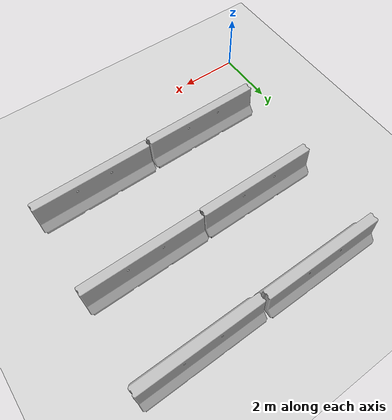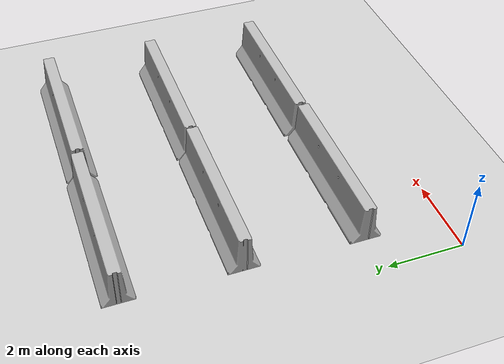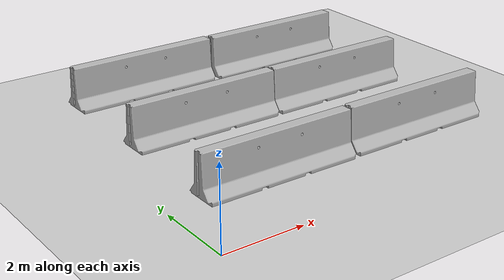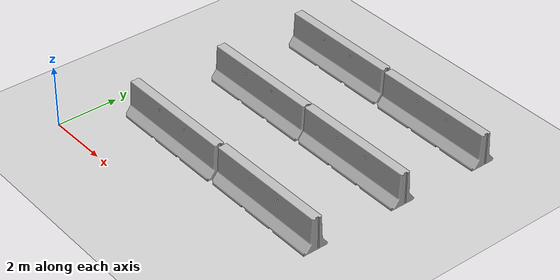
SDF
<sdf version="1.6">
 <world name="default">
  <light name="sun" type="directional">
   <pose>0 0 10 0 -0 0</pose>
   <diffuse>0.8 0.8 0.8 1</diffuse>
   <specular>0.1 0.1 0.1 1</specular>
   <attenuation>
    <range>1000</range>
    <constant>0.9</constant>
    <linear>0.01</linear>
    <quadratic>0.001</quadratic>
   </attenuation>
   <direction>-0.5 0.5 -1</direction>
  </light>
  <model name="ground_plane">
   <static>1</static>
   <link name="link">
    <collision name="collision">
     <geometry><plane><normal>0 0 1</normal><size>100 100</size></plane></geometry>
     <surface><friction><ode><mu>100</mu><mu2>50</mu2></ode></friction></surface>
    </collision>
    <visual name="visual">
     <cast_shadows>0</cast_shadows>
     <geometry><plane><normal>0 0 1</normal><size>100 100</size></plane></geometry>
     <material>
      <script><uri>file://media/materials/scripts/gazebo.material</uri><name>Gazebo/Grey</name></script>
     </material>
    </visual>
   </link>
  </model>
  <gravity>0 0 -9.8</gravity>
  <magnetic_field>6e-06 2.3e-05 -4.2e-05</magnetic_field>
  <atmosphere type="adiabatic"/>
  <physics name="default_physics" default="0" type="ode">
   <max_step_size>0.001</max_step_size>
   <real_time_factor>1</real_time_factor>
   <real_time_update_rate>1000</real_time_update_rate>
  </physics>
  <scene><ambient>0.4 0.4 0.4 1</ambient><background>0.7 0.7 0.7 1</background><shadows>1</shadows></scene>
  <spherical_coordinates>
   <surface_model>EARTH_WGS84</surface_model>
   <latitude_deg>0</latitude_deg>
   <longitude_deg>0</longitude_deg>
   <elevation>0</elevation>
   <heading_deg>0</heading_deg>
  </spherical_coordinates>
  <model name="jersey_barrier">
   <static>1</static>
   <link name="link">
    <visual name="visual">
     <geometry>
      <mesh><uri>model://jersey_barrier/meshes/jersey_barrier.dae</uri><scale>1 1 1</scale></mesh>
     </geometry>
    </visual>
    <collision name="upright">
     <pose>0 0 0.5715 0 -0 0</pose>
     <geometry><box><size>4.06542 0.3063 1.143</size></box></geometry>
    </collision>
    <collision name="base">
     <pose>0 0 0.032258 0 -0 0</pose>
     <geometry><box><size>4.06542 0.8107 0.064516</size></box></geometry>
    </collision>
    <collision name="base2">
     <pose>0 0 0.1 0 -0 0</pose>
     <geometry><box><size>4.06542 0.65 0.1</size></box></geometry>
    </collision>
    <collision name="base3">
     <pose>0 0 0.2 0 -0 0</pose>
     <geometry><box><size>4.06542 0.5 0.1</size></box></geometry>
    </collision>
    <collision name="left-angle">
     <pose>0 -0.224 0.2401 0.9 -0 0</pose>
     <geometry><box><size>4.06542 0.5 0.064516</size></box></geometry>
    </collision>
    <collision name="right-angle">
     <pose>0 0.224 0.2401 -0.9 0 0</pose>
     <geometry><box><size>4.06542 0.5 0.064516</size></box></geometry>
    </collision>
   </link>
   <pose>2.89719 2.14366 0 0 -0 0</pose>
  </model>
  <model name="jersey_barrier_clone">
   <static>1</static>
   <link name="link">
    <visual name="visual">
     <geometry>
      <mesh><uri>model://jersey_barrier/meshes/jersey_barrier.dae</uri><scale>1 1 1</scale></mesh>
     </geometry>
    </visual>
    <collision name="upright">
     <pose>0 0 0.5715 0 -0 0</pose>
     <geometry><box><size>4.06542 0.3063 1.143</size></box></geometry>
    </collision>
    <collision name="base">
     <pose>0 0 0.032258 0 -0 0</pose>
     <geometry><box><size>4.06542 0.8107 0.064516</size></box></geometry>
    </collision>
    <collision name="base2">
     <pose>0 0 0.1 0 -0 0</pose>
     <geometry><box><size>4.06542 0.65 0.1</size></box></geometry>
    </collision>
    <collision name="base3">
     <pose>0 0 0.2 0 -0 0</pose>
     <geometry><box><size>4.06542 0.5 0.1</size></box></geometry>
    </collision>
    <collision name="left-angle">
     <pose>0 -0.224 0.2401 0.9 -0 0</pose>
     <geometry><box><size>4.06542 0.5 0.064516</size></box></geometry>
    </collision>
    <collision name="right-angle">
     <pose>0 0.224 0.2401 -0.9 0 0</pose>
     <geometry><box><size>4.06542 0.5 0.064516</size></box></geometry>
    </collision>
   </link>
   <pose>7.02118 2.18012 0 0 -0 0</pose>
  </model>
  <model name="jersey_barrier_clone_0">
   <static>1</static>
   <link name="link">
    <visual name="visual">
     <geometry>
      <mesh><uri>model://jersey_barrier/meshes/jersey_barrier.dae</uri><scale>1 1 1</scale></mesh>
     </geometry>
    </visual>
    <collision name="upright">
     <pose>0 0 0.5715 0 -0 0</pose>
     <geometry><box><size>4.06542 0.3063 1.143</size></box></geometry>
    </collision>
    <collision name="base">
     <pose>0 0 0.032258 0 -0 0</pose>
     <geometry><box><size>4.06542 0.8107 0.064516</size></box></geometry>
    </collision>
    <collision name="base2">
     <pose>0 0 0.1 0 -0 0</pose>
     <geometry><box><size>4.06542 0.65 0.1</size></box></geometry>
    </collision>
    <collision name="base3">
     <pose>0 0 0.2 0 -0 0</pose>
     <geometry><box><size>4.06542 0.5 0.1</size></box></geometry>
    </collision>
    <collision name="left-angle">
     <pose>0 -0.224 0.2401 0.9 -0 0</pose>
     <geometry><box><size>4.06542 0.5 0.064516</size></box></geometry>
    </collision>
    <collision name="right-angle">
     <pose>0 0.224 0.2401 -0.9 0 0</pose>
     <geometry><box><size>4.06542 0.5 0.064516</size></box></geometry>
    </collision>
   </link>
   <pose>2.98518 5.21937 0 0 -0 0</pose>
  </model>
  <model name="jersey_barrier_clone_1">
   <static>1</static>
   <link name="link">
    <visual name="visual">
     <geometry>
      <mesh><uri>model://jersey_barrier/meshes/jersey_barrier.dae</uri><scale>1 1 1</scale></mesh>
     </geometry>
    </visual>
    <collision name="upright">
     <pose>0 0 0.5715 0 -0 0</pose>
     <geometry><box><size>4.06542 0.3063 1.143</size></box></geometry>
    </collision>
    <collision name="base">
     <pose>0 0 0.032258 0 -0 0</pose>
     <geometry><box><size>4.06542 0.8107 0.064516</size></box></geometry>
    </collision>
    <collision name="base2">
     <pose>0 0 0.1 0 -0 0</pose>
     <geometry><box><size>4.06542 0.65 0.1</size></box></geometry>
    </collision>
    <collision name="base3">
     <pose>0 0 0.2 0 -0 0</pose>
     <geometry><box><size>4.06542 0.5 0.1</size></box></geometry>
    </collision>
    <collision name="left-angle">
     <pose>0 -0.224 0.2401 0.9 -0 0</pose>
     <geometry><box><size>4.06542 0.5 0.064516</size></box></geometry>
    </collision>
    <collision name="right-angle">
     <pose>0 0.224 0.2401 -0.9 0 0</pose>
     <geometry><box><size>4.06542 0.5 0.064516</size></box></geometry>
    </collision>
   </link>
   <pose>7.07216 5.23692 0 0 -0 0</pose>
  </model>
  <model name="jersey_barrier_clone_2">
   <static>1</static>
   <link name="link">
    <visual name="visual">
     <geometry>
      <mesh><uri>model://jersey_barrier/meshes/jersey_barrier.dae</uri><scale>1 1 1</scale></mesh>
     </geometry>
    </visual>
    <collision name="upright">
     <pose>0 0 0.5715 0 -0 0</pose>
     <geometry><box><size>4.06542 0.3063 1.143</size></box></geometry>
    </collision>
    <collision name="base">
     <pose>0 0 0.032258 0 -0 0</pose>
     <geometry><box><size>4.06542 0.8107 0.064516</size></box></geometry>
    </collision>
    <collision name="base2">
     <pose>0 0 0.1 0 -0 0</pose>
     <geometry><box><size>4.06542 0.65 0.1</size></box></geometry>
    </collision>
    <collision name="base3">
     <pose>0 0 0.2 0 -0 0</pose>
     <geometry><box><size>4.06542 0.5 0.1</size></box></geometry>
    </collision>
    <collision name="left-angle">
     <pose>0 -0.224 0.2401 0.9 -0 0</pose>
     <geometry><box><size>4.06542 0.5 0.064516</size></box></geometry>
    </collision>
    <collision name="right-angle">
     <pose>0 0.224 0.2401 -0.9 0 0</pose>
     <geometry><box><size>4.06542 0.5 0.064516</size></box></geometry>
    </collision>
   </link>
   <pose>3.03111 8.20756 0 0 -0 0</pose>
  </model>
  <model name="jersey_barrier_clone_3">
   <static>1</static>
   <link name="link">
    <visual name="visual">
     <geometry>
      <mesh><uri>model://jersey_barrier/meshes/jersey_barrier.dae</uri><scale>1 1 1</scale></mesh>
     </geometry>
    </visual>
    <collision name="upright">
     <pose>0 0 0.5715 0 -0 0</pose>
     <geometry><box><size>4.06542 0.3063 1.143</size></box></geometry>
    </collision>
    <collision name="base">
     <pose>0 0 0.032258 0 -0 0</pose>
     <geometry><box><size>4.06542 0.8107 0.064516</size></box></geometry>
    </collision>
    <collision name="base2">
     <pose>0 0 0.1 0 -0 0</pose>
     <geometry><box><size>4.06542 0.65 0.1</size></box></geometry>
    </collision>
    <collision name="base3">
     <pose>0 0 0.2 0 -0 0</pose>
     <geometry><box><size>4.06542 0.5 0.1</size></box></geometry>
    </collision>
    <collision name="left-angle">
     <pose>0 -0.224 0.2401 0.9 -0 0</pose>
     <geometry><box><size>4.06542 0.5 0.064516</size></box></geometry>
    </collision>
    <collision name="right-angle">
     <pose>0 0.224 0.2401 -0.9 0 0</pose>
     <geometry><box><size>4.06542 0.5 0.064516</size></box></geometry>
    </collision>
   </link>
   <pose>7.18399 8.17601 0 0 -0 0</pose>
  </model>
 </world>
</sdf>
